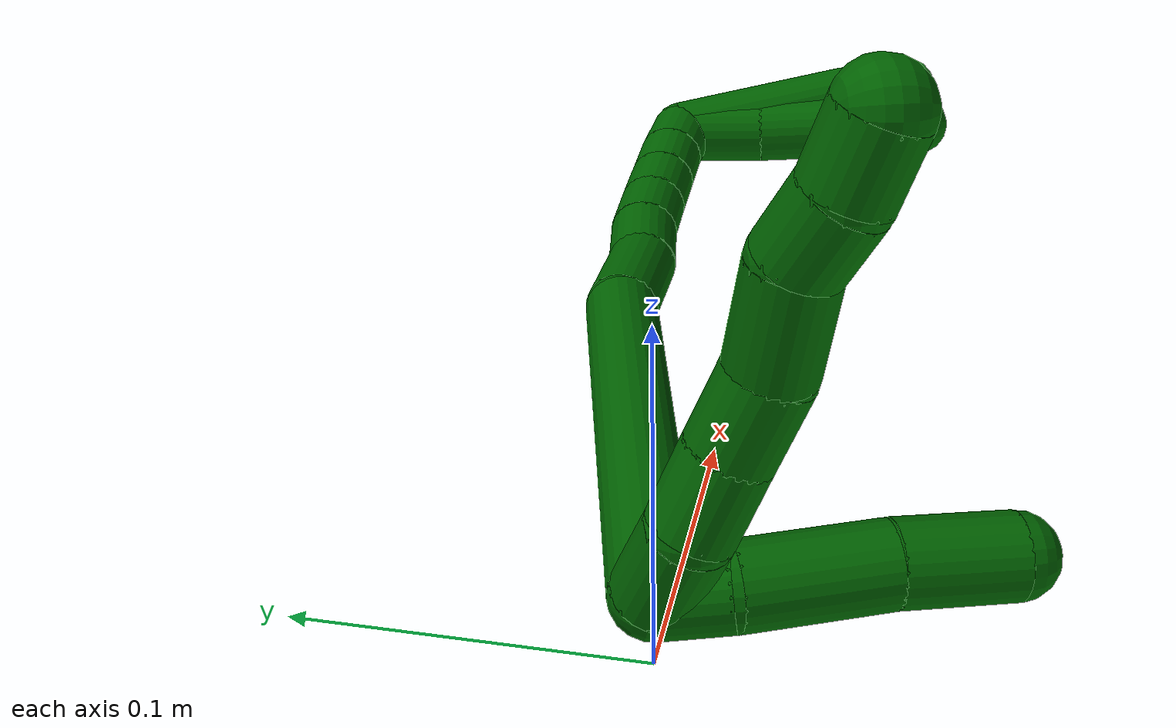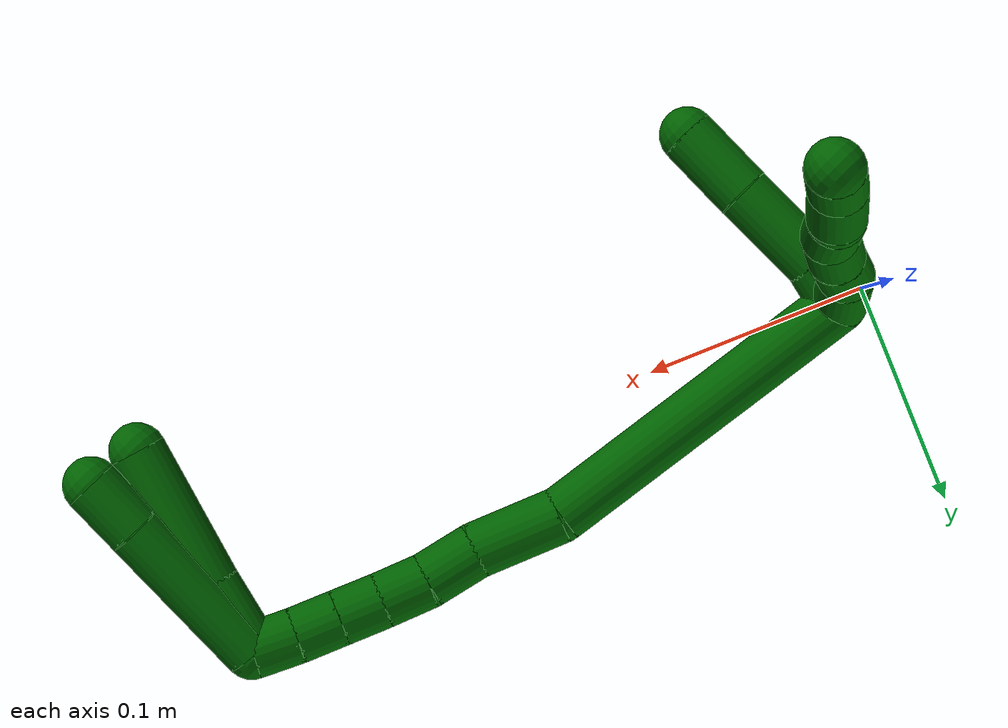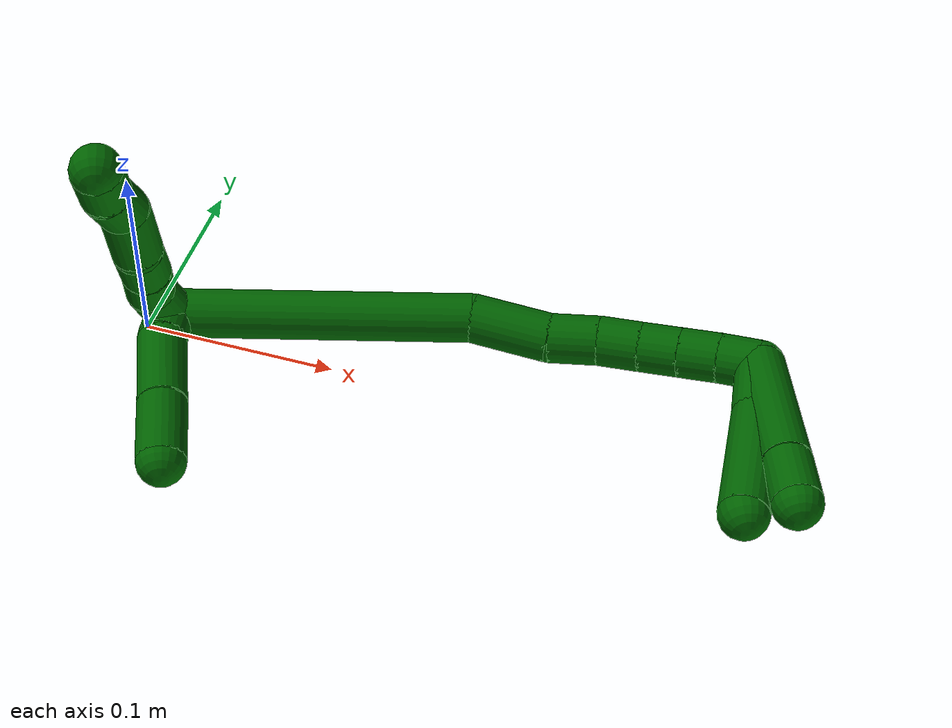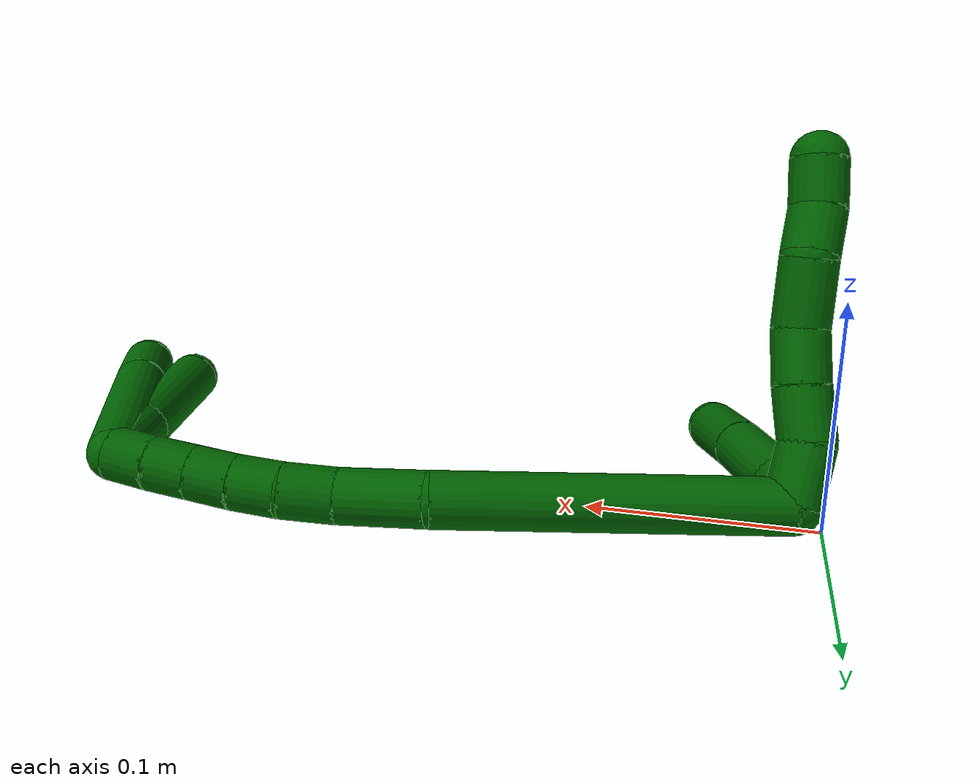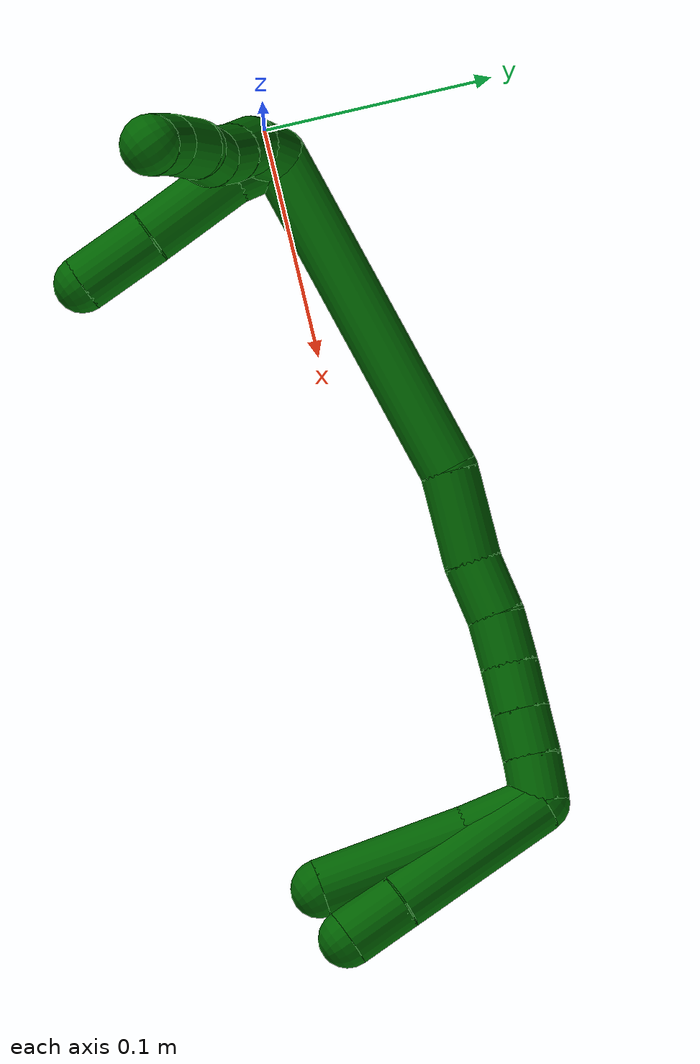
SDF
<sdf version="1.7">
 <world name="default">
  <model name="photoneo_s_sensor">
   <static>1</static>
   <pose>0 0 2 1.57079 1.57079 3.14159</pose>
   <link name="link">
    <inertial><mass>0.1</mass></inertial>
    <sensor name="sensor" type="depth">
     <update_rate>30</update_rate>
     <camera>
      <horizontal_fov>1.22</horizontal_fov>
      <image><width>1920</width><height>1200</height><format>B8G8R8</format></image>
      <clip><near>0.1</near><far>4</far></clip>
      <depth_camera><output>points</output></depth_camera>
     </camera>
     <plugin name="camera_plugin" filename="libgazebo_ros_depth_camera.so">
      <baseline>0.2</baseline>
      <alwaysOn>1</alwaysOn>
      <updateRate>0.0</updateRate>
      <cameraName>camera_ir</cameraName>
      <imageTopicName>/camera/color/image_raw</imageTopicName>
      <cameraInfoTopicName>/camera/color/camera_info</cameraInfoTopicName>
      <depthImageTopicName>/camera/depth/image_raw</depthImageTopicName>
      <depthImageCameraInfoTopicName>/camera/depth/camera_info</depthImageCameraInfoTopicName>
      <pointCloudTopicName>/camera/depth/points</pointCloudTopicName>
      <frameName>fr_optical</frameName>
      <pointCloudCutoff>0.1</pointCloudCutoff>
      <pointCloudCutoffMax>2.0</pointCloudCutoffMax>
      <distortionK1>0</distortionK1>
      <distortionK2>0</distortionK2>
      <distortionK3>0</distortionK3>
      <distortionT1>0</distortionT1>
      <distortionT2>0</distortionT2>
      <CxPrime>0</CxPrime>
      <Cx>0</Cx>
      <Cy>0</Cy>
      <focalLength>0</focalLength>
      <hackBaseline>0</hackBaseline>
     </plugin>
    </sensor>
   </link>
  </model>
  <model name="bin">
   <static>1</static>
   <link name="bottom">
    <collision name="collision-bottom">
     <pose>0 0 -0.01 0 -0 0</pose>
     <geometry><box><size>0.8 0.6 0.02</size></box></geometry>
     <surface>
      <friction><ode><mu>100</mu><mu2>100</mu2></ode></friction>
      <contact><collide_bitmask>65535</collide_bitmask></contact>
     </surface>
    </collision>
   </link>
   <link name="west_wall">
    <collision name="collision-west_wall">
     <pose>-0.41 0 0.1 0 -0 0</pose>
     <geometry><box><size>0.02 0.6 0.2</size></box></geometry>
     <surface>
      <friction><ode><mu>100</mu><mu2>100</mu2></ode></friction>
      <contact><collide_bitmask>65535</collide_bitmask></contact>
     </surface>
    </collision>
   </link>
   <link name="east_wall">
    <collision name="collision-east_wall">
     <pose>0.41 0 0.1 0 -0 0</pose>
     <geometry><box><size>0.02 0.6 0.2</size></box></geometry>
     <surface>
      <friction><ode><mu>100</mu><mu2>100</mu2></ode></friction>
      <contact><collide_bitmask>65535</collide_bitmask></contact>
     </surface>
    </collision>
   </link>
   <link name="south_wall">
    <collision name="collision-south_wall">
     <pose>0 -0.31 0.1 0 -0 0</pose>
     <geometry><box><size>0.8 0.02 0.2</size></box></geometry>
     <surface>
      <friction><ode><mu>100</mu><mu2>100</mu2></ode></friction>
      <contact><collide_bitmask>65535</collide_bitmask></contact>
     </surface>
    </collision>
   </link>
   <link name="north_wall">
    <collision name="collision-north_wall">
     <pose>0 0.31 0.1 0 -0 0</pose>
     <geometry><box><size>0.8 0.02 0.2</size></box></geometry>
     <surface>
      <friction><ode><mu>100</mu><mu2>100</mu2></ode></friction>
      <contact><collide_bitmask>65535</collide_bitmask></contact>
     </surface>
    </collision>
   </link>
  </model>
  <model name="6">
   <static>0</static>
   <link name="6">
    <collision name="collision-cylinder-e_1_2_8">
     <pose>-0.001655 -0.013209 -0.00332 1.81706 -0.120941 -0.154983</pose>
     <geometry><cylinder><radius>0.0125</radius><length>0.027441</length></cylinder></geometry>
     <surface>
      <friction><ode><mu>1.16</mu><mu2>1.16</mu2><slip1>0</slip1><slip2>0</slip2></ode></friction>
      <contact><ode><kp>1e+06</kp><kd>1</kd><max_vel>0</max_vel><min_depth>0.001</min_depth></ode></contact>
     </surface>
    </collision>
    <visual name="visual-cylinder-e_1_2_8">
     <pose>-0.001655 -0.013209 -0.00332 1.81706 -0.120941 -0.154983</pose>
     <geometry><cylinder><radius>0.0125</radius><length>0.027441</length></cylinder></geometry>
     <material><ambient>0 0.392157 0.003922 1</ambient></material>
    </visual>
    <collision name="collision-cylinder-e_2_8_9">
     <pose>-0.001214 -0.037534 -0.011052 1.94859 0.173534 0.254823</pose>
     <geometry><cylinder><radius>0.0125</radius><length>0.024282</length></cylinder></geometry>
     <surface>
      <friction><ode><mu>1.16</mu><mu2>1.16</mu2><slip1>0</slip1><slip2>0</slip2></ode></friction>
      <contact><ode><kp>1e+06</kp><kd>1</kd><max_vel>0</max_vel><min_depth>0.001</min_depth></ode></contact>
     </surface>
    </collision>
    <visual name="visual-cylinder-e_2_8_9">
     <pose>-0.001214 -0.037534 -0.011052 1.94859 0.173534 0.254823</pose>
     <geometry><cylinder><radius>0.0125</radius><length>0.024282</length></cylinder></geometry>
     <material><ambient>0 0.392157 0.003922 1</ambient></material>
    </visual>
    <collision name="collision-cylinder-e_3_9_10">
     <pose>0.002202 -0.060103 -0.019615 1.91858 0.107943 0.153795</pose>
     <geometry><cylinder><radius>0.0125</radius><length>0.024509</length></cylinder></geometry>
     <surface>
      <friction><ode><mu>1.16</mu><mu2>1.16</mu2><slip1>0</slip1><slip2>0</slip2></ode></friction>
      <contact><ode><kp>1e+06</kp><kd>1</kd><max_vel>0</max_vel><min_depth>0.001</min_depth></ode></contact>
     </surface>
    </collision>
    <visual name="visual-cylinder-e_3_9_10">
     <pose>0.002202 -0.060103 -0.019615 1.91858 0.107943 0.153795</pose>
     <geometry><cylinder><radius>0.0125</radius><length>0.024509</length></cylinder></geometry>
     <material><ambient>0 0.392157 0.003922 1</ambient></material>
    </visual>
    <collision name="collision-cylinder-e_4_10_11">
     <pose>0.004832 -0.086746 -0.025142 1.66101 0.085641 0.093727</pose>
     <geometry><cylinder><radius>0.0125</radius><length>0.030614</length></cylinder></geometry>
     <surface>
      <friction><ode><mu>1.16</mu><mu2>1.16</mu2><slip1>0</slip1><slip2>0</slip2></ode></friction>
      <contact><ode><kp>1e+06</kp><kd>1</kd><max_vel>0</max_vel><min_depth>0.001</min_depth></ode></contact>
     </surface>
    </collision>
    <visual name="visual-cylinder-e_4_10_11">
     <pose>0.004832 -0.086746 -0.025142 1.66101 0.085641 0.093727</pose>
     <geometry><cylinder><radius>0.0125</radius><length>0.030614</length></cylinder></geometry>
     <material><ambient>0 0.392157 0.003922 1</ambient></material>
    </visual>
    <collision name="collision-cylinder-e_5_11_12">
     <pose>0.004892 -0.111993 -0.030473 1.94563 -0.115063 -0.168704</pose>
     <geometry><cylinder><radius>0.0125</radius><length>0.021762</length></cylinder></geometry>
     <surface>
      <friction><ode><mu>1.16</mu><mu2>1.16</mu2><slip1>0</slip1><slip2>0</slip2></ode></friction>
      <contact><ode><kp>1e+06</kp><kd>1</kd><max_vel>0</max_vel><min_depth>0.001</min_depth></ode></contact>
     </surface>
    </collision>
    <visual name="visual-cylinder-e_5_11_12">
     <pose>0.004892 -0.111993 -0.030473 1.94563 -0.115063 -0.168704</pose>
     <geometry><cylinder><radius>0.0125</radius><length>0.021762</length></cylinder></geometry>
     <material><ambient>0 0.392157 0.003922 1</ambient></material>
    </visual>
    <collision name="collision-cylinder-e_6_12_6">
     <pose>0.004599 -0.132282 -0.037403 1.85353 0.089497 0.119136</pose>
     <geometry><cylinder><radius>0.0125</radius><length>0.021393</length></cylinder></geometry>
     <surface>
      <friction><ode><mu>1.16</mu><mu2>1.16</mu2><slip1>0</slip1><slip2>0</slip2></ode></friction>
      <contact><ode><kp>1e+06</kp><kd>1</kd><max_vel>0</max_vel><min_depth>0.001</min_depth></ode></contact>
     </surface>
    </collision>
    <visual name="visual-cylinder-e_6_12_6">
     <pose>0.004599 -0.132282 -0.037403 1.85353 0.089497 0.119136</pose>
     <geometry><cylinder><radius>0.0125</radius><length>0.021393</length></cylinder></geometry>
     <material><ambient>0 0.392157 0.003922 1</ambient></material>
    </visual>
    <collision name="collision-cylinder-e_1_2_13">
     <pose>-0.001938 -0.002003 -0.010173 2.94721 -0.184795 -1.51993</pose>
     <geometry><cylinder><radius>0.0125</radius><length>0.021096</length></cylinder></geometry>
     <surface>
      <friction><ode><mu>1.16</mu><mu2>1.16</mu2><slip1>0</slip1><slip2>0</slip2></ode></friction>
      <contact><ode><kp>1e+06</kp><kd>1</kd><max_vel>0</max_vel><min_depth>0.001</min_depth></ode></contact>
     </surface>
    </collision>
    <visual name="visual-cylinder-e_1_2_13">
     <pose>-0.001938 -0.002003 -0.010173 2.94721 -0.184795 -1.51993</pose>
     <geometry><cylinder><radius>0.0125</radius><length>0.021096</length></cylinder></geometry>
     <material><ambient>0 0.392157 0.003922 1</ambient></material>
    </visual>
    <collision name="collision-cylinder-e_2_13_14">
     <pose>-0.003665 -0.00501 -0.042063 3.09539 0.009697 0.413691</pose>
     <geometry><cylinder><radius>0.0125</radius><length>0.043481</length></cylinder></geometry>
     <surface>
      <friction><ode><mu>1.16</mu><mu2>1.16</mu2><slip1>0</slip1><slip2>0</slip2></ode></friction>
      <contact><ode><kp>1e+06</kp><kd>1</kd><max_vel>0</max_vel><min_depth>0.001</min_depth></ode></contact>
     </surface>
    </collision>
    <visual name="visual-cylinder-e_2_13_14">
     <pose>-0.003665 -0.00501 -0.042063 3.09539 0.009697 0.413691</pose>
     <geometry><cylinder><radius>0.0125</radius><length>0.043481</length></cylinder></geometry>
     <material><ambient>0 0.392157 0.003922 1</ambient></material>
    </visual>
    <collision name="collision-cylinder-e_3_14_5">
     <pose>-0.003975 -0.005623 -0.081478 -3.11953 -0.029355 1.85271</pose>
     <geometry><cylinder><radius>0.0125</radius><length>0.035423</length></cylinder></geometry>
     <surface>
      <friction><ode><mu>1.16</mu><mu2>1.16</mu2><slip1>0</slip1><slip2>0</slip2></ode></friction>
      <contact><ode><kp>1e+06</kp><kd>1</kd><max_vel>0</max_vel><min_depth>0.001</min_depth></ode></contact>
     </surface>
    </collision>
    <visual name="visual-cylinder-e_3_14_5">
     <pose>-0.003975 -0.005623 -0.081478 -3.11953 -0.029355 1.85271</pose>
     <geometry><cylinder><radius>0.0125</radius><length>0.035423</length></cylinder></geometry>
     <material><ambient>0 0.392157 0.003922 1</ambient></material>
    </visual>
    <collision name="collision-cylinder-e_1_2_15">
     <pose>0.074712 0.012055 -0.010339 -2.27972 1.36135 -2.10885</pose>
     <geometry><cylinder><radius>0.0125</radius><length>0.152762</length></cylinder></geometry>
     <surface>
      <friction><ode><mu>1.16</mu><mu2>1.16</mu2><slip1>0</slip1><slip2>0</slip2></ode></friction>
      <contact><ode><kp>1e+06</kp><kd>1</kd><max_vel>0</max_vel><min_depth>0.001</min_depth></ode></contact>
     </surface>
    </collision>
    <visual name="visual-cylinder-e_1_2_15">
     <pose>0.074712 0.012055 -0.010339 -2.27972 1.36135 -2.10885</pose>
     <geometry><cylinder><radius>0.0125</radius><length>0.152762</length></cylinder></geometry>
     <material><ambient>0 0.392157 0.003922 1</ambient></material>
    </visual>
    <collision name="collision-cylinder-e_2_15_16">
     <pose>0.167574 0.028519 -0.028211 -2.61201 1.12252 -2.32722</pose>
     <geometry><cylinder><radius>0.0125</radius><length>0.040282</length></cylinder></geometry>
     <surface>
      <friction><ode><mu>1.16</mu><mu2>1.16</mu2><slip1>0</slip1><slip2>0</slip2></ode></friction>
      <contact><ode><kp>1e+06</kp><kd>1</kd><max_vel>0</max_vel><min_depth>0.001</min_depth></ode></contact>
     </surface>
    </collision>
    <visual name="visual-cylinder-e_2_15_16">
     <pose>0.167574 0.028519 -0.028211 -2.61201 1.12252 -2.32722</pose>
     <geometry><cylinder><radius>0.0125</radius><length>0.040282</length></cylinder></geometry>
     <material><ambient>0 0.392157 0.003922 1</ambient></material>
    </visual>
    <collision name="collision-cylinder-e_3_16_17">
     <pose>0.197913 0.034244 -0.038599 -2.70997 1.31852 -2.59019</pose>
     <geometry><cylinder><radius>0.0125</radius><length>0.025173</length></cylinder></geometry>
     <surface>
      <friction><ode><mu>1.16</mu><mu2>1.16</mu2><slip1>0</slip1><slip2>0</slip2></ode></friction>
      <contact><ode><kp>1e+06</kp><kd>1</kd><max_vel>0</max_vel><min_depth>0.001</min_depth></ode></contact>
     </surface>
    </collision>
    <visual name="visual-cylinder-e_3_16_17">
     <pose>0.197913 0.034244 -0.038599 -2.70997 1.31852 -2.59019</pose>
     <geometry><cylinder><radius>0.0125</radius><length>0.025173</length></cylinder></geometry>
     <material><ambient>0 0.392157 0.003922 1</ambient></material>
    </visual>
    <collision name="collision-cylinder-e_4_17_18">
     <pose>0.220121 0.036442 -0.045316 -2.91672 1.19412 -2.81242</pose>
     <geometry><cylinder><radius>0.0125</radius><length>0.021551</length></cylinder></geometry>
     <surface>
      <friction><ode><mu>1.16</mu><mu2>1.16</mu2><slip1>0</slip1><slip2>0</slip2></ode></friction>
      <contact><ode><kp>1e+06</kp><kd>1</kd><max_vel>0</max_vel><min_depth>0.001</min_depth></ode></contact>
     </surface>
    </collision>
    <visual name="visual-cylinder-e_4_17_18">
     <pose>0.220121 0.036442 -0.045316 -2.91672 1.19412 -2.81242</pose>
     <geometry><cylinder><radius>0.0125</radius><length>0.021551</length></cylinder></geometry>
     <material><ambient>0 0.392157 0.003922 1</ambient></material>
    </visual>
    <collision name="collision-cylinder-e_5_18_19">
     <pose>0.239414 0.037686 -0.053034 -3.04827 1.17531 -3.00164</pose>
     <geometry><cylinder><radius>0.0125</radius><length>0.020097</length></cylinder></geometry>
     <surface>
      <friction><ode><mu>1.16</mu><mu2>1.16</mu2><slip1>0</slip1><slip2>0</slip2></ode></friction>
      <contact><ode><kp>1e+06</kp><kd>1</kd><max_vel>0</max_vel><min_depth>0.001</min_depth></ode></contact>
     </surface>
    </collision>
    <visual name="visual-cylinder-e_5_18_19">
     <pose>0.239414 0.037686 -0.053034 -3.04827 1.17531 -3.00164</pose>
     <geometry><cylinder><radius>0.0125</radius><length>0.020097</length></cylinder></geometry>
     <material><ambient>0 0.392157 0.003922 1</ambient></material>
    </visual>
    <collision name="collision-cylinder-e_6_19_20">
     <pose>0.257971 0.038446 -0.060719 -3.03791 1.17757 -2.98651</pose>
     <geometry><cylinder><radius>0.0125</radius><length>0.020102</length></cylinder></geometry>
     <surface>
      <friction><ode><mu>1.16</mu><mu2>1.16</mu2><slip1>0</slip1><slip2>0</slip2></ode></friction>
      <contact><ode><kp>1e+06</kp><kd>1</kd><max_vel>0</max_vel><min_depth>0.001</min_depth></ode></contact>
     </surface>
    </collision>
    <visual name="visual-cylinder-e_6_19_20">
     <pose>0.257971 0.038446 -0.060719 -3.03791 1.17757 -2.98651</pose>
     <geometry><cylinder><radius>0.0125</radius><length>0.020102</length></cylinder></geometry>
     <material><ambient>0 0.392157 0.003922 1</ambient></material>
    </visual>
    <collision name="collision-cylinder-e_7_20_1">
     <pose>0.276282 0.039091 -0.068885 -3.08471 1.12248 -3.05114</pose>
     <geometry><cylinder><radius>0.0125</radius><length>0.020033</length></cylinder></geometry>
     <surface>
      <friction><ode><mu>1.16</mu><mu2>1.16</mu2><slip1>0</slip1><slip2>0</slip2></ode></friction>
      <contact><ode><kp>1e+06</kp><kd>1</kd><max_vel>0</max_vel><min_depth>0.001</min_depth></ode></contact>
     </surface>
    </collision>
    <visual name="visual-cylinder-e_7_20_1">
     <pose>0.276282 0.039091 -0.068885 -3.08471 1.12248 -3.05114</pose>
     <geometry><cylinder><radius>0.0125</radius><length>0.020033</length></cylinder></geometry>
     <material><ambient>0 0.392157 0.003922 1</ambient></material>
    </visual>
    <collision name="collision-cylinder-e_1_1_21">
     <pose>0.281626 0.03773 -0.089563 3.04356 -0.220579 -2.30759</pose>
     <geometry><cylinder><radius>0.0125</radius><length>0.033662</length></cylinder></geometry>
     <surface>
      <friction><ode><mu>1.16</mu><mu2>1.16</mu2><slip1>0</slip1><slip2>0</slip2></ode></friction>
      <contact><ode><kp>1e+06</kp><kd>1</kd><max_vel>0</max_vel><min_depth>0.001</min_depth></ode></contact>
     </surface>
    </collision>
    <visual name="visual-cylinder-e_1_1_21">
     <pose>0.281626 0.03773 -0.089563 3.04356 -0.220579 -2.30759</pose>
     <geometry><cylinder><radius>0.0125</radius><length>0.033662</length></cylinder></geometry>
     <material><ambient>0 0.392157 0.003922 1</ambient></material>
    </visual>
    <collision name="collision-cylinder-e_2_21_4">
     <pose>0.269477 0.030563 -0.137493 2.96734 -0.258097 -1.95673</pose>
     <geometry><cylinder><radius>0.0125</radius><length>0.066338</length></cylinder></geometry>
     <surface>
      <friction><ode><mu>1.16</mu><mu2>1.16</mu2><slip1>0</slip1><slip2>0</slip2></ode></friction>
      <contact><ode><kp>1e+06</kp><kd>1</kd><max_vel>0</max_vel><min_depth>0.001</min_depth></ode></contact>
     </surface>
    </collision>
    <visual name="visual-cylinder-e_2_21_4">
     <pose>0.269477 0.030563 -0.137493 2.96734 -0.258097 -1.95673</pose>
     <geometry><cylinder><radius>0.0125</radius><length>0.066338</length></cylinder></geometry>
     <material><ambient>0 0.392157 0.003922 1</ambient></material>
    </visual>
    <collision name="collision-cylinder-e_1_1_22">
     <pose>0.285419 0.032035 -0.108992 2.94021 0.003024 0.029925</pose>
     <geometry><cylinder><radius>0.0125</radius><length>0.073022</length></cylinder></geometry>
     <surface>
      <friction><ode><mu>1.16</mu><mu2>1.16</mu2><slip1>0</slip1><slip2>0</slip2></ode></friction>
      <contact><ode><kp>1e+06</kp><kd>1</kd><max_vel>0</max_vel><min_depth>0.001</min_depth></ode></contact>
     </surface>
    </collision>
    <visual name="visual-cylinder-e_1_1_22">
     <pose>0.285419 0.032035 -0.108992 2.94021 0.003024 0.029925</pose>
     <geometry><cylinder><radius>0.0125</radius><length>0.073022</length></cylinder></geometry>
     <material><ambient>0 0.392157 0.003922 1</ambient></material>
    </visual>
    <collision name="collision-cylinder-e_2_22_3">
     <pose>0.285496 0.022915 -0.158131 3.00651 -0.00249 -0.036811</pose>
     <geometry><cylinder><radius>0.0125</radius><length>0.026978</length></cylinder></geometry>
     <surface>
      <friction><ode><mu>1.16</mu><mu2>1.16</mu2><slip1>0</slip1><slip2>0</slip2></ode></friction>
      <contact><ode><kp>1e+06</kp><kd>1</kd><max_vel>0</max_vel><min_depth>0.001</min_depth></ode></contact>
     </surface>
    </collision>
    <visual name="visual-cylinder-e_2_22_3">
     <pose>0.285496 0.022915 -0.158131 3.00651 -0.00249 -0.036811</pose>
     <geometry><cylinder><radius>0.0125</radius><length>0.026978</length></cylinder></geometry>
     <material><ambient>0 0.392157 0.003922 1</ambient></material>
    </visual>
    <collision name="collision-sphere-3">
     <pose>0.285462 0.021098 -0.171497 0 -0 0</pose>
     <geometry><sphere><radius>0.0125</radius></sphere></geometry>
     <surface>
      <friction><ode><mu>1.16</mu><mu2>1.16</mu2><slip1>0</slip1><slip2>0</slip2></ode></friction>
      <contact><ode><kp>1e+06</kp><kd>1</kd><max_vel>0</max_vel><min_depth>0.001</min_depth></ode></contact>
     </surface>
    </collision>
    <visual name="visual-sphere-3">
     <pose>0.285462 0.021098 -0.171497 0 -0 0</pose>
     <geometry><sphere><radius>0.0125</radius></sphere></geometry>
     <material><ambient>0 0.392157 0.003922 1</ambient></material>
    </visual>
    <collision name="collision-sphere-22">
     <pose>0.285529 0.024732 -0.144765 0 -0 0</pose>
     <geometry><sphere><radius>0.0125</radius></sphere></geometry>
     <surface>
      <friction><ode><mu>1.16</mu><mu2>1.16</mu2><slip1>0</slip1><slip2>0</slip2></ode></friction>
      <contact><ode><kp>1e+06</kp><kd>1</kd><max_vel>0</max_vel><min_depth>0.001</min_depth></ode></contact>
     </surface>
    </collision>
    <visual name="visual-sphere-22">
     <pose>0.285529 0.024732 -0.144765 0 -0 0</pose>
     <geometry><sphere><radius>0.0125</radius></sphere></geometry>
     <material><ambient>0 0.392157 0.003922 1</ambient></material>
    </visual>
    <collision name="collision-sphere-4">
     <pose>0.261011 0.025003 -0.169077 0 -0 0</pose>
     <geometry><sphere><radius>0.0125</radius></sphere></geometry>
     <surface>
      <friction><ode><mu>1.16</mu><mu2>1.16</mu2><slip1>0</slip1><slip2>0</slip2></ode></friction>
      <contact><ode><kp>1e+06</kp><kd>1</kd><max_vel>0</max_vel><min_depth>0.001</min_depth></ode></contact>
     </surface>
    </collision>
    <visual name="visual-sphere-4">
     <pose>0.261011 0.025003 -0.169077 0 -0 0</pose>
     <geometry><sphere><radius>0.0125</radius></sphere></geometry>
     <material><ambient>0 0.392157 0.003922 1</ambient></material>
    </visual>
    <collision name="collision-sphere-21">
     <pose>0.277943 0.036123 -0.105908 0 -0 0</pose>
     <geometry><sphere><radius>0.0125</radius></sphere></geometry>
     <surface>
      <friction><ode><mu>1.16</mu><mu2>1.16</mu2><slip1>0</slip1><slip2>0</slip2></ode></friction>
      <contact><ode><kp>1e+06</kp><kd>1</kd><max_vel>0</max_vel><min_depth>0.001</min_depth></ode></contact>
     </surface>
    </collision>
    <visual name="visual-sphere-21">
     <pose>0.277943 0.036123 -0.105908 0 -0 0</pose>
     <geometry><sphere><radius>0.0125</radius></sphere></geometry>
     <material><ambient>0 0.392157 0.003922 1</ambient></material>
    </visual>
    <collision name="collision-sphere-1">
     <pose>0.285308 0.039338 -0.073219 0 -0 0</pose>
     <geometry><sphere><radius>0.0125</radius></sphere></geometry>
     <surface>
      <friction><ode><mu>1.16</mu><mu2>1.16</mu2><slip1>0</slip1><slip2>0</slip2></ode></friction>
      <contact><ode><kp>1e+06</kp><kd>1</kd><max_vel>0</max_vel><min_depth>0.001</min_depth></ode></contact>
     </surface>
    </collision>
    <visual name="visual-sphere-1">
     <pose>0.285308 0.039338 -0.073219 0 -0 0</pose>
     <geometry><sphere><radius>0.0125</radius></sphere></geometry>
     <material><ambient>0 0.392157 0.003922 1</ambient></material>
    </visual>
    <collision name="collision-sphere-12">
     <pose>0.003643 -0.122051 -0.034431 0 -0 0</pose>
     <geometry><sphere><radius>0.0125</radius></sphere></geometry>
     <surface>
      <friction><ode><mu>1.16</mu><mu2>1.16</mu2><slip1>0</slip1><slip2>0</slip2></ode></friction>
      <contact><ode><kp>1e+06</kp><kd>1</kd><max_vel>0</max_vel><min_depth>0.001</min_depth></ode></contact>
     </surface>
    </collision>
    <visual name="visual-sphere-12">
     <pose>0.003643 -0.122051 -0.034431 0 -0 0</pose>
     <geometry><sphere><radius>0.0125</radius></sphere></geometry>
     <material><ambient>0 0.392157 0.003922 1</ambient></material>
    </visual>
    <collision name="collision-sphere-11">
     <pose>0.006141 -0.101934 -0.026516 0 -0 0</pose>
     <geometry><sphere><radius>0.0125</radius></sphere></geometry>
     <surface>
      <friction><ode><mu>1.16</mu><mu2>1.16</mu2><slip1>0</slip1><slip2>0</slip2></ode></friction>
      <contact><ode><kp>1e+06</kp><kd>1</kd><max_vel>0</max_vel><min_depth>0.001</min_depth></ode></contact>
     </surface>
    </collision>
    <visual name="visual-sphere-11">
     <pose>0.006141 -0.101934 -0.026516 0 -0 0</pose>
     <geometry><sphere><radius>0.0125</radius></sphere></geometry>
     <material><ambient>0 0.392157 0.003922 1</ambient></material>
    </visual>
    <collision name="collision-sphere-10">
     <pose>0.003522 -0.071557 -0.023768 0 -0 0</pose>
     <geometry><sphere><radius>0.0125</radius></sphere></geometry>
     <surface>
      <friction><ode><mu>1.16</mu><mu2>1.16</mu2><slip1>0</slip1><slip2>0</slip2></ode></friction>
      <contact><ode><kp>1e+06</kp><kd>1</kd><max_vel>0</max_vel><min_depth>0.001</min_depth></ode></contact>
     </surface>
    </collision>
    <visual name="visual-sphere-10">
     <pose>0.003522 -0.071557 -0.023768 0 -0 0</pose>
     <geometry><sphere><radius>0.0125</radius></sphere></geometry>
     <material><ambient>0 0.392157 0.003922 1</ambient></material>
    </visual>
    <collision name="collision-sphere-9">
     <pose>0.000882 -0.048649 -0.015463 0 -0 0</pose>
     <geometry><sphere><radius>0.0125</radius></sphere></geometry>
     <surface>
      <friction><ode><mu>1.16</mu><mu2>1.16</mu2><slip1>0</slip1><slip2>0</slip2></ode></friction>
      <contact><ode><kp>1e+06</kp><kd>1</kd><max_vel>0</max_vel><min_depth>0.001</min_depth></ode></contact>
     </surface>
    </collision>
    <visual name="visual-sphere-9">
     <pose>0.000882 -0.048649 -0.015463 0 -0 0</pose>
     <geometry><sphere><radius>0.0125</radius></sphere></geometry>
     <material><ambient>0 0.392157 0.003922 1</ambient></material>
    </visual>
    <collision name="collision-sphere-2">
     <geometry><sphere><radius>0.0125</radius></sphere></geometry>
     <surface>
      <friction><ode><mu>1.16</mu><mu2>1.16</mu2><slip1>0</slip1><slip2>0</slip2></ode></friction>
      <contact><ode><kp>1e+06</kp><kd>1</kd><max_vel>0</max_vel><min_depth>0.001</min_depth></ode></contact>
     </surface>
    </collision>
    <visual name="visual-sphere-2">
     <geometry><sphere><radius>0.0125</radius></sphere></geometry>
     <material><ambient>0 0.392157 0.003922 1</ambient></material>
    </visual>
    <collision name="collision-sphere-19">
     <pose>0.248687 0.038047 -0.056889 0 -0 0</pose>
     <geometry><sphere><radius>0.0125</radius></sphere></geometry>
     <surface>
      <friction><ode><mu>1.16</mu><mu2>1.16</mu2><slip1>0</slip1><slip2>0</slip2></ode></friction>
      <contact><ode><kp>1e+06</kp><kd>1</kd><max_vel>0</max_vel><min_depth>0.001</min_depth></ode></contact>
     </surface>
    </collision>
    <visual name="visual-sphere-19">
     <pose>0.248687 0.038047 -0.056889 0 -0 0</pose>
     <geometry><sphere><radius>0.0125</radius></sphere></geometry>
     <material><ambient>0 0.392157 0.003922 1</ambient></material>
    </visual>
    <collision name="collision-sphere-8">
     <pose>-0.003311 -0.026418 -0.006641 0 -0 0</pose>
     <geometry><sphere><radius>0.0125</radius></sphere></geometry>
     <surface>
      <friction><ode><mu>1.16</mu><mu2>1.16</mu2><slip1>0</slip1><slip2>0</slip2></ode></friction>
      <contact><ode><kp>1e+06</kp><kd>1</kd><max_vel>0</max_vel><min_depth>0.001</min_depth></ode></contact>
     </surface>
    </collision>
    <visual name="visual-sphere-8">
     <pose>-0.003311 -0.026418 -0.006641 0 -0 0</pose>
     <geometry><sphere><radius>0.0125</radius></sphere></geometry>
     <material><ambient>0 0.392157 0.003922 1</ambient></material>
    </visual>
    <collision name="collision-sphere-6">
     <pose>0.005555 -0.142512 -0.040375 0 -0 0</pose>
     <geometry><sphere><radius>0.0125</radius></sphere></geometry>
     <surface>
      <friction><ode><mu>1.16</mu><mu2>1.16</mu2><slip1>0</slip1><slip2>0</slip2></ode></friction>
      <contact><ode><kp>1e+06</kp><kd>1</kd><max_vel>0</max_vel><min_depth>0.001</min_depth></ode></contact>
     </surface>
    </collision>
    <visual name="visual-sphere-6">
     <pose>0.005555 -0.142512 -0.040375 0 -0 0</pose>
     <geometry><sphere><radius>0.0125</radius></sphere></geometry>
     <material><ambient>0 0.392157 0.003922 1</ambient></material>
    </visual>
    <collision name="collision-sphere-13">
     <pose>-0.003876 -0.004006 -0.020346 0 -0 0</pose>
     <geometry><sphere><radius>0.0125</radius></sphere></geometry>
     <surface>
      <friction><ode><mu>1.16</mu><mu2>1.16</mu2><slip1>0</slip1><slip2>0</slip2></ode></friction>
      <contact><ode><kp>1e+06</kp><kd>1</kd><max_vel>0</max_vel><min_depth>0.001</min_depth></ode></contact>
     </surface>
    </collision>
    <visual name="visual-sphere-13">
     <pose>-0.003876 -0.004006 -0.020346 0 -0 0</pose>
     <geometry><sphere><radius>0.0125</radius></sphere></geometry>
     <material><ambient>0 0.392157 0.003922 1</ambient></material>
    </visual>
    <collision name="collision-sphere-14">
     <pose>-0.003455 -0.006014 -0.063779 0 -0 0</pose>
     <geometry><sphere><radius>0.0125</radius></sphere></geometry>
     <surface>
      <friction><ode><mu>1.16</mu><mu2>1.16</mu2><slip1>0</slip1><slip2>0</slip2></ode></friction>
      <contact><ode><kp>1e+06</kp><kd>1</kd><max_vel>0</max_vel><min_depth>0.001</min_depth></ode></contact>
     </surface>
    </collision>
    <visual name="visual-sphere-14">
     <pose>-0.003455 -0.006014 -0.063779 0 -0 0</pose>
     <geometry><sphere><radius>0.0125</radius></sphere></geometry>
     <material><ambient>0 0.392157 0.003922 1</ambient></material>
    </visual>
    <collision name="collision-sphere-5">
     <pose>-0.004494 -0.005233 -0.099178 0 -0 0</pose>
     <geometry><sphere><radius>0.0125</radius></sphere></geometry>
     <surface>
      <friction><ode><mu>1.16</mu><mu2>1.16</mu2><slip1>0</slip1><slip2>0</slip2></ode></friction>
      <contact><ode><kp>1e+06</kp><kd>1</kd><max_vel>0</max_vel><min_depth>0.001</min_depth></ode></contact>
     </surface>
    </collision>
    <visual name="visual-sphere-5">
     <pose>-0.004494 -0.005233 -0.099178 0 -0 0</pose>
     <geometry><sphere><radius>0.0125</radius></sphere></geometry>
     <material><ambient>0 0.392157 0.003922 1</ambient></material>
    </visual>
    <collision name="collision-sphere-15">
     <pose>0.149423 0.02411 -0.020678 0 -0 0</pose>
     <geometry><sphere><radius>0.0125</radius></sphere></geometry>
     <surface>
      <friction><ode><mu>1.16</mu><mu2>1.16</mu2><slip1>0</slip1><slip2>0</slip2></ode></friction>
      <contact><ode><kp>1e+06</kp><kd>1</kd><max_vel>0</max_vel><min_depth>0.001</min_depth></ode></contact>
     </surface>
    </collision>
    <visual name="visual-sphere-15">
     <pose>0.149423 0.02411 -0.020678 0 -0 0</pose>
     <geometry><sphere><radius>0.0125</radius></sphere></geometry>
     <material><ambient>0 0.392157 0.003922 1</ambient></material>
    </visual>
    <collision name="collision-sphere-16">
     <pose>0.185725 0.032929 -0.035745 0 -0 0</pose>
     <geometry><sphere><radius>0.0125</radius></sphere></geometry>
     <surface>
      <friction><ode><mu>1.16</mu><mu2>1.16</mu2><slip1>0</slip1><slip2>0</slip2></ode></friction>
      <contact><ode><kp>1e+06</kp><kd>1</kd><max_vel>0</max_vel><min_depth>0.001</min_depth></ode></contact>
     </surface>
    </collision>
    <visual name="visual-sphere-16">
     <pose>0.185725 0.032929 -0.035745 0 -0 0</pose>
     <geometry><sphere><radius>0.0125</radius></sphere></geometry>
     <material><ambient>0 0.392157 0.003922 1</ambient></material>
    </visual>
    <collision name="collision-sphere-17">
     <pose>0.210101 0.035558 -0.041452 0 -0 0</pose>
     <geometry><sphere><radius>0.0125</radius></sphere></geometry>
     <surface>
      <friction><ode><mu>1.16</mu><mu2>1.16</mu2><slip1>0</slip1><slip2>0</slip2></ode></friction>
      <contact><ode><kp>1e+06</kp><kd>1</kd><max_vel>0</max_vel><min_depth>0.001</min_depth></ode></contact>
     </surface>
    </collision>
    <visual name="visual-sphere-17">
     <pose>0.210101 0.035558 -0.041452 0 -0 0</pose>
     <geometry><sphere><radius>0.0125</radius></sphere></geometry>
     <material><ambient>0 0.392157 0.003922 1</ambient></material>
    </visual>
    <collision name="collision-sphere-18">
     <pose>0.230141 0.037325 -0.04918 0 -0 0</pose>
     <geometry><sphere><radius>0.0125</radius></sphere></geometry>
     <surface>
      <friction><ode><mu>1.16</mu><mu2>1.16</mu2><slip1>0</slip1><slip2>0</slip2></ode></friction>
      <contact><ode><kp>1e+06</kp><kd>1</kd><max_vel>0</max_vel><min_depth>0.001</min_depth></ode></contact>
     </surface>
    </collision>
    <visual name="visual-sphere-18">
     <pose>0.230141 0.037325 -0.04918 0 -0 0</pose>
     <geometry><sphere><radius>0.0125</radius></sphere></geometry>
     <material><ambient>0 0.392157 0.003922 1</ambient></material>
    </visual>
    <collision name="collision-sphere-20">
     <pose>0.267255 0.038844 -0.06455 0 -0 0</pose>
     <geometry><sphere><radius>0.0125</radius></sphere></geometry>
     <surface>
      <friction><ode><mu>1.16</mu><mu2>1.16</mu2><slip1>0</slip1><slip2>0</slip2></ode></friction>
      <contact><ode><kp>1e+06</kp><kd>1</kd><max_vel>0</max_vel><min_depth>0.001</min_depth></ode></contact>
     </surface>
    </collision>
    <visual name="visual-sphere-20">
     <pose>0.267255 0.038844 -0.06455 0 -0 0</pose>
     <geometry><sphere><radius>0.0125</radius></sphere></geometry>
     <material><ambient>0 0.392157 0.003922 1</ambient></material>
    </visual>
    <inertial>
     <pose>0.132417 0.00277 -0.054259 0 -0 0</pose>
     <mass>0.75</mass>
     <inertia>
      <ixx>-4.7e-05</ixx>
      <ixy>0</ixy>
      <ixz>0</ixz>
      <iyy>0.000189</iyy>
      <iyz>0</iyz>
      <izz>-0.000358</izz>
     </inertia>
    </inertial>
   </link>
   <pose>0.013252 0.002603 0.011889 -1.52559 -0.181633 0.394901</pose>
  </model>
 </world>
</sdf>
